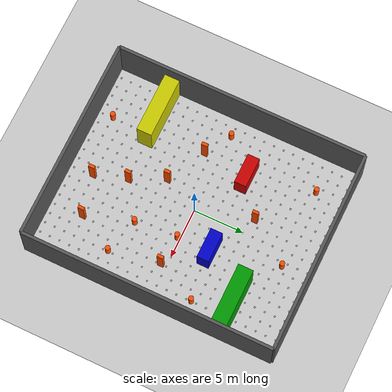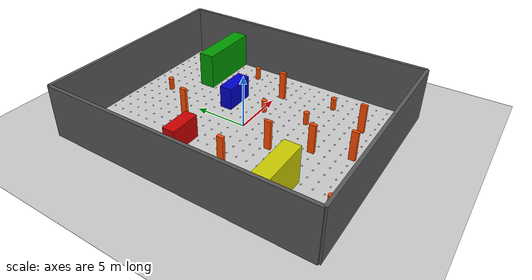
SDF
<sdf version='1.7'>
  <world name='arena_20x25'>
    <gravity>0 0 -9.81</gravity>
    <scene>
      <ambient>0.3 0.3 0.3 1</ambient>
      <shadows>1</shadows>
      <background>0.7 0.7 0.7 1</background>
    </scene>
    <physics name='default_physics' default='1' type='ode'>
      <max_step_size>0.001</max_step_size>
      <real_time_update_rate>1000</real_time_update_rate>
      <ode>
        <solver>
          <type>quick</type>
          <iters>50</iters>
          <sor>1.3</sor>
          <use_dynamic_moi_rescaling>0</use_dynamic_moi_rescaling>
        </solver>
        <constraints>
          <cfm>0</cfm>
          <erp>0.2</erp>
          <contact_max_correcting_vel>100</contact_max_correcting_vel>
          <contact_surface_layer>0.001</contact_surface_layer>
        </constraints>
      </ode>
      <real_time_factor>1</real_time_factor>
    </physics>
    <model name='ground_plane'>
      <static>1</static>
      <link name='link'>
        <collision name='collision'>
          <geometry>
            <plane>
              <normal>0 0 1</normal>
              <size>100 100</size>
            </plane>
          </geometry>
          <surface>
            <friction>
              <ode>
                <mu>100</mu>
                <mu2>50</mu2>
              </ode>
              <torsional>
                <ode/>
              </torsional>
            </friction>
            <contact>
              <ode/>
            </contact>
            <bounce/>
          </surface>
          <max_contacts>10</max_contacts>
        </collision>
        <visual name='visual'>
          <cast_shadows>0</cast_shadows>
          <geometry>
            <plane>
              <normal>0 0 1</normal>
              <size>100 100</size>
            </plane>
          </geometry>
          <material>
            <script>
              <uri>file://media/materials/scripts/gazebo.material</uri>
              <name>Gazebo/Grey</name>
            </script>
          </material>
        </visual>
        <self_collide>0</self_collide>
        <enable_wind>0</enable_wind>
        <kinematic>0</kinematic>
      </link>
    </model>
    <model name='apriltag_floor'>
      <static>1</static>
      <pose>0 0 0.001 0 -0 0</pose>
      <link name='link'>
        <visual name='apriltag_grid'>
          <cast_shadows>0</cast_shadows>
          <geometry>
            <mesh>
              <uri>model://apriltag_floor/meshes/apriltag_grid.obj</uri>
            </mesh>
          </geometry>
          <material>
            <script>
              <uri>model://apriltag_floor/materials/scripts</uri>
              <uri>model://apriltag_floor/materials/textures</uri>
              <name>AprilTag/Atlas</name>
            </script>
          </material>
        </visual>
        <self_collide>0</self_collide>
        <enable_wind>0</enable_wind>
        <kinematic>0</kinematic>
      </link>
    </model>
    <model name='shelf_a'>
      <static>1</static>
      <pose>-5 3 1.1 0 -0 0</pose>
      <link name='link'>
        <visual name='visual'>
          <geometry>
            <box>
              <size>3 1.2 2.2</size>
            </box>
          </geometry>
          <material>
            <ambient>0.8 0 0 1</ambient>
            <diffuse>0.8 0 0 1</diffuse>
            <specular>0.1 0.1 0.1 1</specular>
          </material>
        </visual>
        <collision name='collision'>
          <geometry>
            <box>
              <size>3 1.2 2.2</size>
            </box>
          </geometry>
          <max_contacts>10</max_contacts>
          <surface>
            <contact>
              <ode/>
            </contact>
            <bounce/>
            <friction>
              <torsional>
                <ode/>
              </torsional>
              <ode/>
            </friction>
          </surface>
        </collision>
        <self_collide>0</self_collide>
        <enable_wind>0</enable_wind>
        <kinematic>0</kinematic>
      </link>
    </model>
    <model name='shelf_b'>
      <static>1</static>
      <pose>3 3 1.1 0 -0 0</pose>
      <link name='link'>
        <visual name='visual'>
          <geometry>
            <box>
              <size>3 1.2 2.2</size>
            </box>
          </geometry>
          <material>
            <ambient>0 0 0.8 1</ambient>
            <diffuse>0 0 0.8 1</diffuse>
            <specular>0.1 0.1 0.1 1</specular>
          </material>
        </visual>
        <collision name='collision'>
          <geometry>
            <box>
              <size>3 1.2 2.2</size>
            </box>
          </geometry>
          <max_contacts>10</max_contacts>
          <surface>
            <contact>
              <ode/>
            </contact>
            <bounce/>
            <friction>
              <torsional>
                <ode/>
              </torsional>
              <ode/>
            </friction>
          </surface>
        </collision>
        <self_collide>0</self_collide>
        <enable_wind>0</enable_wind>
        <kinematic>0</kinematic>
      </link>
    </model>
    <model name='shelf_c'>
      <static>1</static>
      <pose>-6.85 -7 1.75 0 -0 0</pose>
      <link name='link'>
        <visual name='visual'>
          <geometry>
            <box>
              <size>6 1.5 3.5</size>
            </box>
          </geometry>
          <material>
            <ambient>0.8 0.8 0 1</ambient>
            <diffuse>0.8 0.8 0 1</diffuse>
            <specular>0.1 0.1 0.1 1</specular>
          </material>
        </visual>
        <collision name='collision'>
          <geometry>
            <box>
              <size>6 1.5 3.5</size>
            </box>
          </geometry>
          <max_contacts>10</max_contacts>
          <surface>
            <contact>
              <ode/>
            </contact>
            <bounce/>
            <friction>
              <torsional>
                <ode/>
              </torsional>
              <ode/>
            </friction>
          </surface>
        </collision>
        <self_collide>0</self_collide>
        <enable_wind>0</enable_wind>
        <kinematic>0</kinematic>
      </link>
    </model>
    <model name='shelf_d'>
      <static>1</static>
      <pose>6.85 7 1.75 0 -0 3.14159</pose>
      <link name='link'>
        <visual name='visual'>
          <geometry>
            <box>
              <size>6 1.5 3.5</size>
            </box>
          </geometry>
          <material>
            <ambient>0 0.6 0 1</ambient>
            <diffuse>0 0.6 0 1</diffuse>
            <specular>0.1 0.1 0.1 1</specular>
          </material>
        </visual>
        <collision name='collision'>
          <geometry>
            <box>
              <size>6 1.5 3.5</size>
            </box>
          </geometry>
          <max_contacts>10</max_contacts>
          <surface>
            <contact>
              <ode/>
            </contact>
            <bounce/>
            <friction>
              <torsional>
                <ode/>
              </torsional>
              <ode/>
            </friction>
          </surface>
        </collision>
        <self_collide>0</self_collide>
        <enable_wind>0</enable_wind>
        <kinematic>0</kinematic>
      </link>
    </model>
    <model name='orange_cylinder_1'>
      <static>1</static>
      <pose>6.995 -5.472 0.6 0 -0 0</pose>
      <link name='link'>
        <visual name='visual'>
          <geometry>
            <cylinder>
              <radius>0.25</radius>
              <length>1.2</length>
            </cylinder>
          </geometry>
          <material>
            <ambient>1 0.3 0 1</ambient>
            <diffuse>1 0.3 0 1</diffuse>
          </material>
        </visual>
        <collision name='collision'>
          <geometry>
            <cylinder>
              <radius>0.25</radius>
              <length>1.2</length>
            </cylinder>
          </geometry>
          <max_contacts>10</max_contacts>
          <surface>
            <contact>
              <ode/>
            </contact>
            <bounce/>
            <friction>
              <torsional>
                <ode/>
              </torsional>
              <ode/>
            </friction>
          </surface>
        </collision>
        <self_collide>0</self_collide>
        <enable_wind>0</enable_wind>
        <kinematic>0</kinematic>
      </link>
    </model>
    <model name='orange_cylinder_2'>
      <static>1</static>
      <pose>3.074 -0.269 0.6 0 -0 0</pose>
      <link name='link'>
        <visual name='visual'>
          <geometry>
            <cylinder>
              <radius>0.25</radius>
              <length>1.2</length>
            </cylinder>
          </geometry>
          <material>
            <ambient>1 0.3 0 1</ambient>
            <diffuse>1 0.3 0 1</diffuse>
          </material>
        </visual>
        <collision name='collision'>
          <geometry>
            <cylinder>
              <radius>0.25</radius>
              <length>1.2</length>
            </cylinder>
          </geometry>
          <max_contacts>10</max_contacts>
          <surface>
            <contact>
              <ode/>
            </contact>
            <bounce/>
            <friction>
              <torsional>
                <ode/>
              </torsional>
              <ode/>
            </friction>
          </surface>
        </collision>
        <self_collide>0</self_collide>
        <enable_wind>0</enable_wind>
        <kinematic>0</kinematic>
      </link>
    </model>
    <model name='orange_cylinder_3'>
      <static>1</static>
      <pose>3.454 -4.469 0.6 0 -0 0</pose>
      <link name='link'>
        <visual name='visual'>
          <geometry>
            <cylinder>
              <radius>0.25</radius>
              <length>1.2</length>
            </cylinder>
          </geometry>
          <material>
            <ambient>1 0.3 0 1</ambient>
            <diffuse>1 0.3 0 1</diffuse>
          </material>
        </visual>
        <collision name='collision'>
          <geometry>
            <cylinder>
              <radius>0.25</radius>
              <length>1.2</length>
            </cylinder>
          </geometry>
          <max_contacts>10</max_contacts>
          <surface>
            <contact>
              <ode/>
            </contact>
            <bounce/>
            <friction>
              <torsional>
                <ode/>
              </torsional>
              <ode/>
            </friction>
          </surface>
        </collision>
        <self_collide>0</self_collide>
        <enable_wind>0</enable_wind>
        <kinematic>0</kinematic>
      </link>
    </model>
    <model name='orange_bar_1'>
      <static>1</static>
      <pose>0 -6.774 1.4 0 -0 0</pose>
      <link name='link'>
        <visual name='visual'>
          <geometry>
            <box>
              <size>0.3 0.6 2.8</size>
            </box>
          </geometry>
          <material>
            <ambient>1 0.3 0 1</ambient>
            <diffuse>1 0.3 0 1</diffuse>
          </material>
        </visual>
        <collision name='collision'>
          <geometry>
            <box>
              <size>0.3 0.6 2.8</size>
            </box>
          </geometry>
          <max_contacts>10</max_contacts>
          <surface>
            <contact>
              <ode/>
            </contact>
            <bounce/>
            <friction>
              <torsional>
                <ode/>
              </torsional>
              <ode/>
            </friction>
          </surface>
        </collision>
        <self_collide>0</self_collide>
        <enable_wind>0</enable_wind>
        <kinematic>0</kinematic>
      </link>
    </model>
    <model name='orange_bar_2'>
      <static>1</static>
      <pose>6.066 -0.502 1.4 0 -0 0</pose>
      <link name='link'>
        <visual name='visual'>
          <geometry>
            <box>
              <size>0.3 0.6 2.8</size>
            </box>
          </geometry>
          <material>
            <ambient>1 0.3 0 1</ambient>
            <diffuse>1 0.3 0 1</diffuse>
          </material>
        </visual>
        <collision name='collision'>
          <geometry>
            <box>
              <size>0.3 0.6 2.8</size>
            </box>
          </geometry>
          <max_contacts>10</max_contacts>
          <surface>
            <contact>
              <ode/>
            </contact>
            <bounce/>
            <friction>
              <torsional>
                <ode/>
              </torsional>
              <ode/>
            </friction>
          </surface>
        </collision>
        <self_collide>0</self_collide>
        <enable_wind>0</enable_wind>
        <kinematic>0</kinematic>
      </link>
    </model>
    <model name='orange_bar_3'>
      <static>1</static>
      <pose>1 -10 1.4 0 -0 0</pose>
      <link name='link'>
        <visual name='visual'>
          <geometry>
            <box>
              <size>0.3 0.6 2.8</size>
            </box>
          </geometry>
          <material>
            <ambient>1 0.3 0 1</ambient>
            <diffuse>1 0.3 0 1</diffuse>
          </material>
        </visual>
        <collision name='collision'>
          <geometry>
            <box>
              <size>0.3 0.6 2.8</size>
            </box>
          </geometry>
          <max_contacts>10</max_contacts>
          <surface>
            <contact>
              <ode/>
            </contact>
            <bounce/>
            <friction>
              <torsional>
                <ode/>
              </torsional>
              <ode/>
            </friction>
          </surface>
        </collision>
        <self_collide>0</self_collide>
        <enable_wind>0</enable_wind>
        <kinematic>0</kinematic>
      </link>
    </model>
    <light name='sun_northeast' type='directional'>
      <pose>0 0 10 0 -0 0</pose>
      <direction>0.5 0.5 -1</direction>
      <cast_shadows>1</cast_shadows>
      <diffuse>0.8 0.8 0.8 1</diffuse>
      <specular>0.2 0.2 0.2 1</specular>
      <attenuation>
        <range>100</range>
        <constant>1</constant>
        <linear>0</linear>
        <quadratic>0</quadratic>
      </attenuation>
      <spot>
        <inner_angle>0</inner_angle>
        <outer_angle>0</outer_angle>
        <falloff>0</falloff>
      </spot>
    </light>
    <light name='sun_northwest' type='directional'>
      <pose>0 0 10 0 -0 0</pose>
      <direction>-0.5 0.5 -1</direction>
      <cast_shadows>0</cast_shadows>
      <diffuse>0.15 0.15 0.15 1</diffuse>
      <specular>0.05 0.05 0.05 1</specular>
      <attenuation>
        <range>100</range>
        <constant>1</constant>
        <linear>0</linear>
        <quadratic>0</quadratic>
      </attenuation>
      <spot>
        <inner_angle>0</inner_angle>
        <outer_angle>0</outer_angle>
        <falloff>0</falloff>
      </spot>
    </light>
    <light name='sun_southeast' type='directional'>
      <pose>0 0 10 0 -0 0</pose>
      <direction>0.5 -0.5 -1</direction>
      <cast_shadows>0</cast_shadows>
      <diffuse>0.15 0.15 0.15 1</diffuse>
      <specular>0.05 0.05 0.05 1</specular>
      <attenuation>
        <range>100</range>
        <constant>1</constant>
        <linear>0</linear>
        <quadratic>0</quadratic>
      </attenuation>
      <spot>
        <inner_angle>0</inner_angle>
        <outer_angle>0</outer_angle>
        <falloff>0</falloff>
      </spot>
    </light>
    <light name='sun_southwest' type='directional'>
      <pose>0 0 10 0 -0 0</pose>
      <direction>-0.5 -0.5 -1</direction>
      <cast_shadows>0</cast_shadows>
      <diffuse>0.15 0.15 0.15 1</diffuse>
      <specular>0.05 0.05 0.05 1</specular>
      <attenuation>
        <range>100</range>
        <constant>1</constant>
        <linear>0</linear>
        <quadratic>0</quadratic>
      </attenuation>
      <spot>
        <inner_angle>0</inner_angle>
        <outer_angle>0</outer_angle>
        <falloff>0</falloff>
      </spot>
    </light>
    <light name='directional_east' type='directional'>
      <pose>0 0 10 0 -0 0</pose>
      <direction>-1 0 -1</direction>
      <cast_shadows>0</cast_shadows>
      <diffuse>0.06 0.06 0.06 1</diffuse>
      <specular>0.02 0.02 0.02 1</specular>
    </light>
    <light name='directional_west' type='directional'>
      <pose>0 0 10 0 -0 0</pose>
      <direction>1 0 -1</direction>
      <cast_shadows>0</cast_shadows>
      <diffuse>0.06 0.06 0.06 1</diffuse>
      <specular>0.02 0.02 0.02 1</specular>
    </light>
    <light name='directional_north' type='directional'>
      <pose>0 0 10 0 -0 0</pose>
      <direction>0 -1 -1</direction>
      <cast_shadows>0</cast_shadows>
      <diffuse>0.06 0.06 0.06 1</diffuse>
      <specular>0.02 0.02 0.02 1</specular>
    </light>
    <light name='directional_south' type='directional'>
      <pose>0 0 10 0 -0 0</pose>
      <direction>0 1 -1</direction>
      <cast_shadows>0</cast_shadows>
      <diffuse>0.06 0.06 0.06 1</diffuse>
      <specular>0.02 0.02 0.02 1</specular>
    </light>
    <model name='wall_north'>
      <static>1</static>
      <pose>10 0 2.5 0 -0 0</pose>
      <link name='link'>
        <visual name='visual'>
          <geometry>
            <box>
              <size>0.3 25 5</size>
            </box>
          </geometry>
          <material>
            <ambient>0.25 0.25 0.25 1</ambient>
            <diffuse>0.35 0.35 0.35 1</diffuse>
            <specular>0.1 0.1 0.1 1</specular>
          </material>
        </visual>
        <collision name='collision'>
          <geometry>
            <box>
              <size>0.3 25 5</size>
            </box>
          </geometry>
          <max_contacts>10</max_contacts>
          <surface>
            <contact>
              <ode/>
            </contact>
            <bounce/>
            <friction>
              <torsional>
                <ode/>
              </torsional>
              <ode/>
            </friction>
          </surface>
        </collision>
        <self_collide>0</self_collide>
        <enable_wind>0</enable_wind>
        <kinematic>0</kinematic>
      </link>
    </model>
    <model name='wall_south'>
      <static>1</static>
      <pose>-10 0 2.5 0 -0 0</pose>
      <link name='link'>
        <visual name='visual'>
          <geometry>
            <box>
              <size>0.3 25 5</size>
            </box>
          </geometry>
          <material>
            <ambient>0.25 0.25 0.25 1</ambient>
            <diffuse>0.35 0.35 0.35 1</diffuse>
            <specular>0.1 0.1 0.1 1</specular>
          </material>
        </visual>
        <collision name='collision'>
          <geometry>
            <box>
              <size>0.3 25 5</size>
            </box>
          </geometry>
          <max_contacts>10</max_contacts>
          <surface>
            <contact>
              <ode/>
            </contact>
            <bounce/>
            <friction>
              <torsional>
                <ode/>
              </torsional>
              <ode/>
            </friction>
          </surface>
        </collision>
        <self_collide>0</self_collide>
        <enable_wind>0</enable_wind>
        <kinematic>0</kinematic>
      </link>
    </model>
    <model name='wall_east'>
      <static>1</static>
      <pose>0 12.5 2.5 0 -0 0</pose>
      <link name='link'>
        <visual name='visual'>
          <geometry>
            <box>
              <size>20 0.3 5</size>
            </box>
          </geometry>
          <material>
            <ambient>0.25 0.25 0.25 1</ambient>
            <diffuse>0.35 0.35 0.35 1</diffuse>
            <specular>0.1 0.1 0.1 1</specular>
          </material>
        </visual>
        <collision name='collision'>
          <geometry>
            <box>
              <size>20 0.3 5</size>
            </box>
          </geometry>
          <max_contacts>10</max_contacts>
          <surface>
            <contact>
              <ode/>
            </contact>
            <bounce/>
            <friction>
              <torsional>
                <ode/>
              </torsional>
              <ode/>
            </friction>
          </surface>
        </collision>
        <self_collide>0</self_collide>
        <enable_wind>0</enable_wind>
        <kinematic>0</kinematic>
      </link>
    </model>
    <model name='wall_west'>
      <static>1</static>
      <pose>0 -12.5 2.5 0 -0 0</pose>
      <link name='link'>
        <visual name='visual'>
          <geometry>
            <box>
              <size>20 0.3 5</size>
            </box>
          </geometry>
          <material>
            <ambient>0.25 0.25 0.25 1</ambient>
            <diffuse>0.35 0.35 0.35 1</diffuse>
            <specular>0.1 0.1 0.1 1</specular>
          </material>
        </visual>
        <collision name='collision'>
          <geometry>
            <box>
              <size>20 0.3 5</size>
            </box>
          </geometry>
          <max_contacts>10</max_contacts>
          <surface>
            <contact>
              <ode/>
            </contact>
            <bounce/>
            <friction>
              <torsional>
                <ode/>
              </torsional>
              <ode/>
            </friction>
          </surface>
        </collision>
        <self_collide>0</self_collide>
        <enable_wind>0</enable_wind>
        <kinematic>0</kinematic>
      </link>
    </model>
    <magnetic_field>6e-06 2.3e-05 -4.2e-05</magnetic_field>
    <atmosphere type='adiabatic'/>
    <wind/>
    <spherical_coordinates>
      <surface_model>EARTH_WGS84</surface_model>
      <latitude_deg>0</latitude_deg>
      <longitude_deg>0</longitude_deg>
      <elevation>0</elevation>
      <heading_deg>0</heading_deg>
    </spherical_coordinates>
    <model name='orange_cylinder_4'>
      <static>1</static>
      <pose>-8.05046 0.013651 0.6 0 -0 0</pose>
      <link name='link'>
        <visual name='visual'>
          <geometry>
            <cylinder>
              <radius>0.25</radius>
              <length>1.2</length>
            </cylinder>
          </geometry>
          <material>
            <ambient>1 0.3 0 1</ambient>
            <diffuse>1 0.3 0 1</diffuse>
          </material>
        </visual>
        <collision name='collision'>
          <geometry>
            <cylinder>
              <radius>0.25</radius>
              <length>1.2</length>
            </cylinder>
          </geometry>
          <max_contacts>10</max_contacts>
          <surface>
            <contact>
              <ode/>
            </contact>
            <bounce/>
            <friction>
              <torsional>
                <ode/>
              </torsional>
              <ode/>
            </friction>
          </surface>
        </collision>
        <self_collide>0</self_collide>
        <enable_wind>0</enable_wind>
        <kinematic>0</kinematic>
      </link>
    </model>
    <model name='orange_bar_4'>
      <static>1</static>
      <pose>-5.44236 -1.5277 1.4 0 -0 0</pose>
      <link name='link'>
        <visual name='visual'>
          <geometry>
            <box>
              <size>0.3 0.6 2.8</size>
            </box>
          </geometry>
          <material>
            <ambient>1 0.3 0 1</ambient>
            <diffuse>1 0.3 0 1</diffuse>
          </material>
        </visual>
        <collision name='collision'>
          <geometry>
            <box>
              <size>0.3 0.6 2.8</size>
            </box>
          </geometry>
          <max_contacts>10</max_contacts>
          <surface>
            <contact>
              <ode/>
            </contact>
            <bounce/>
            <friction>
              <torsional>
                <ode/>
              </torsional>
              <ode/>
            </friction>
          </surface>
        </collision>
        <self_collide>0</self_collide>
        <enable_wind>0</enable_wind>
        <kinematic>0</kinematic>
      </link>
    </model>
    <model name='orange_bar_5'>
      <static>1</static>
      <pose>-1.56311 -3.51188 1.4 0 -0 0</pose>
      <link name='link'>
        <visual name='visual'>
          <geometry>
            <box>
              <size>0.3 0.6 2.8</size>
            </box>
          </geometry>
          <material>
            <ambient>1 0.3 0 1</ambient>
            <diffuse>1 0.3 0 1</diffuse>
          </material>
        </visual>
        <collision name='collision'>
          <geometry>
            <box>
              <size>0.3 0.6 2.8</size>
            </box>
          </geometry>
          <max_contacts>10</max_contacts>
          <surface>
            <contact>
              <ode/>
            </contact>
            <bounce/>
            <friction>
              <torsional>
                <ode/>
              </torsional>
              <ode/>
            </friction>
          </surface>
        </collision>
        <self_collide>0</self_collide>
        <enable_wind>0</enable_wind>
        <kinematic>0</kinematic>
      </link>
    </model>
    <model name='orange_bar_6'>
      <static>1</static>
      <pose>5.005875 -9.073792 1.4 0 -0 0</pose>
      <link name='link'>
        <visual name='visual'>
          <geometry>
            <box>
              <size>0.3 0.6 2.8</size>
            </box>
          </geometry>
          <material>
            <ambient>1 0.3 0 1</ambient>
            <diffuse>1 0.3 0 1</diffuse>
          </material>
        </visual>
        <collision name='collision'>
          <geometry>
            <box>
              <size>0.3 0.6 2.8</size>
            </box>
          </geometry>
          <max_contacts>10</max_contacts>
          <surface>
            <contact>
              <ode/>
            </contact>
            <bounce/>
            <friction>
              <torsional>
                <ode/>
              </torsional>
              <ode/>
            </friction>
          </surface>
        </collision>
        <self_collide>0</self_collide>
        <enable_wind>0</enable_wind>
        <kinematic>0</kinematic>
      </link>
    </model>
    <model name='orange_cylinder_5'>
      <static>1</static>
      <pose>-6.44653 9.49878 0.6 0 -0 0</pose>
      <link name='link'>
        <visual name='visual'>
          <geometry>
            <cylinder>
              <radius>0.25</radius>
              <length>1.2</length>
            </cylinder>
          </geometry>
          <material>
            <ambient>1 0.3 0 1</ambient>
            <diffuse>1 0.3 0 1</diffuse>
          </material>
        </visual>
        <collision name='collision'>
          <geometry>
            <cylinder>
              <radius>0.25</radius>
              <length>1.2</length>
            </cylinder>
          </geometry>
          <max_contacts>10</max_contacts>
          <surface>
            <contact>
              <ode/>
            </contact>
            <bounce/>
            <friction>
              <torsional>
                <ode/>
              </torsional>
              <ode/>
            </friction>
          </surface>
        </collision>
        <self_collide>0</self_collide>
        <enable_wind>0</enable_wind>
        <kinematic>0</kinematic>
      </link>
    </model>
    <model name='orange_bar_7'>
      <static>1</static>
      <pose>-1.47945 5.51133 1.4 0 -0 0</pose>
      <link name='link'>
        <visual name='visual'>
          <geometry>
            <box>
              <size>0.3 0.6 2.8</size>
            </box>
          </geometry>
          <material>
            <ambient>1 0.3 0 1</ambient>
            <diffuse>1 0.3 0 1</diffuse>
          </material>
        </visual>
        <collision name='collision'>
          <geometry>
            <box>
              <size>0.3 0.6 2.8</size>
            </box>
          </geometry>
          <max_contacts>10</max_contacts>
          <surface>
            <contact>
              <ode/>
            </contact>
            <bounce/>
            <friction>
              <torsional>
                <ode/>
              </torsional>
              <ode/>
            </friction>
          </surface>
        </collision>
        <self_collide>0</self_collide>
        <enable_wind>0</enable_wind>
        <kinematic>0</kinematic>
      </link>
    </model>
    <model name='orange_cylinder_6'>
      <static>1</static>
      <pose>1.43793 9.60785 0.6 0 -0 0</pose>
      <link name='link'>
        <visual name='visual'>
          <geometry>
            <cylinder>
              <radius>0.25</radius>
              <length>1.2</length>
            </cylinder>
          </geometry>
          <material>
            <ambient>1 0.3 0 1</ambient>
            <diffuse>1 0.3 0 1</diffuse>
          </material>
        </visual>
        <collision name='collision'>
          <geometry>
            <cylinder>
              <radius>0.25</radius>
              <length>1.2</length>
            </cylinder>
          </geometry>
          <max_contacts>10</max_contacts>
          <surface>
            <contact>
              <ode/>
            </contact>
            <bounce/>
            <friction>
              <torsional>
                <ode/>
              </torsional>
              <ode/>
            </friction>
          </surface>
        </collision>
        <self_collide>0</self_collide>
        <enable_wind>0</enable_wind>
        <kinematic>0</kinematic>
      </link>
    </model>
    <model name='orange_cylinder_7'>
      <static>1</static>
      <pose>-4.99176 -10.8953 0.6 0 -0 0</pose>
      <link name='link'>
        <visual name='visual'>
          <geometry>
            <cylinder>
              <radius>0.25</radius>
              <length>1.2</length>
            </cylinder>
          </geometry>
          <material>
            <ambient>1 0.3 0 1</ambient>
            <diffuse>1 0.3 0 1</diffuse>
          </material>
        </visual>
        <collision name='collision'>
          <geometry>
            <cylinder>
              <radius>0.25</radius>
              <length>1.2</length>
            </cylinder>
          </geometry>
          <max_contacts>10</max_contacts>
          <surface>
            <contact>
              <ode/>
            </contact>
            <bounce/>
            <friction>
              <torsional>
                <ode/>
              </torsional>
              <ode/>
            </friction>
          </surface>
        </collision>
        <self_collide>0</self_collide>
        <enable_wind>0</enable_wind>
        <kinematic>0</kinematic>
      </link>
    </model>
    <model name='orange_cylinder_8'>
      <static>1</static>
      <pose>8.01234 3.51559 0.6 0 -0 0</pose>
      <link name='link'>
        <visual name='visual'>
          <geometry>
            <cylinder>
              <radius>0.25</radius>
              <length>1.2</length>
            </cylinder>
          </geometry>
          <material>
            <ambient>1 0.3 0 1</ambient>
            <diffuse>1 0.3 0 1</diffuse>
          </material>
        </visual>
        <collision name='collision'>
          <geometry>
            <cylinder>
              <radius>0.25</radius>
              <length>1.2</length>
            </cylinder>
          </geometry>
          <max_contacts>10</max_contacts>
          <surface>
            <contact>
              <ode/>
            </contact>
            <bounce/>
            <friction>
              <torsional>
                <ode/>
              </torsional>
              <ode/>
            </friction>
          </surface>
        </collision>
        <self_collide>0</self_collide>
        <enable_wind>0</enable_wind>
        <kinematic>0</kinematic>
      </link>
    </model>

  </world>
</sdf>
